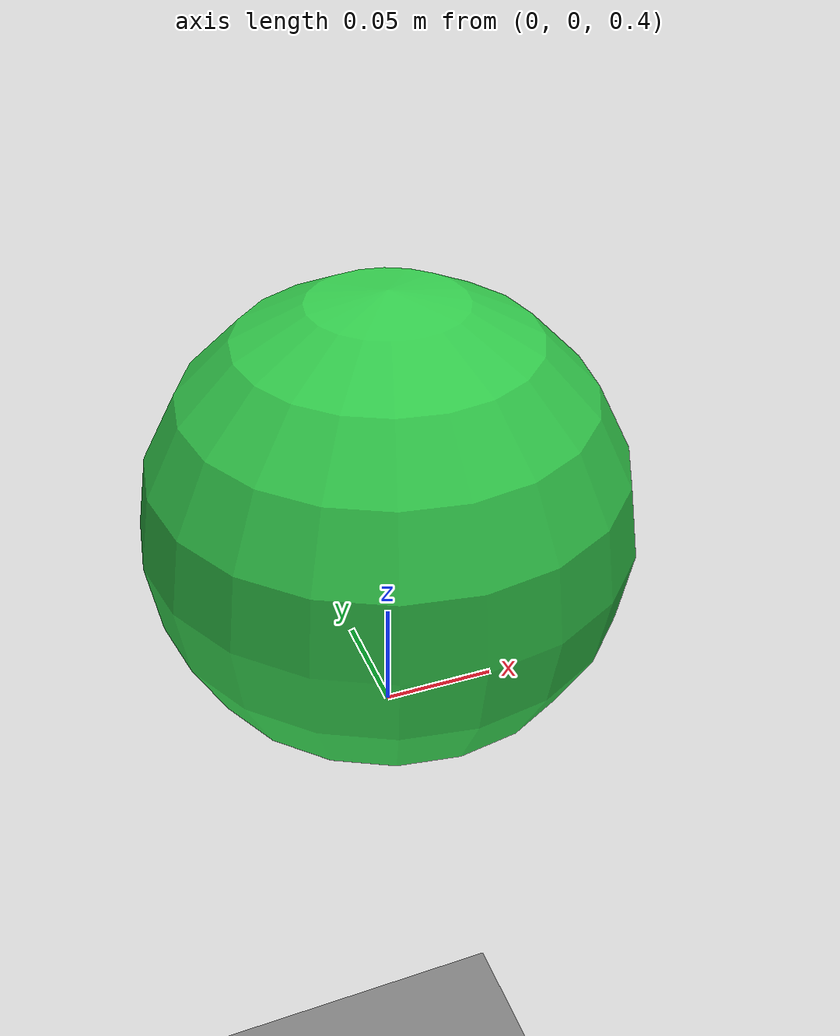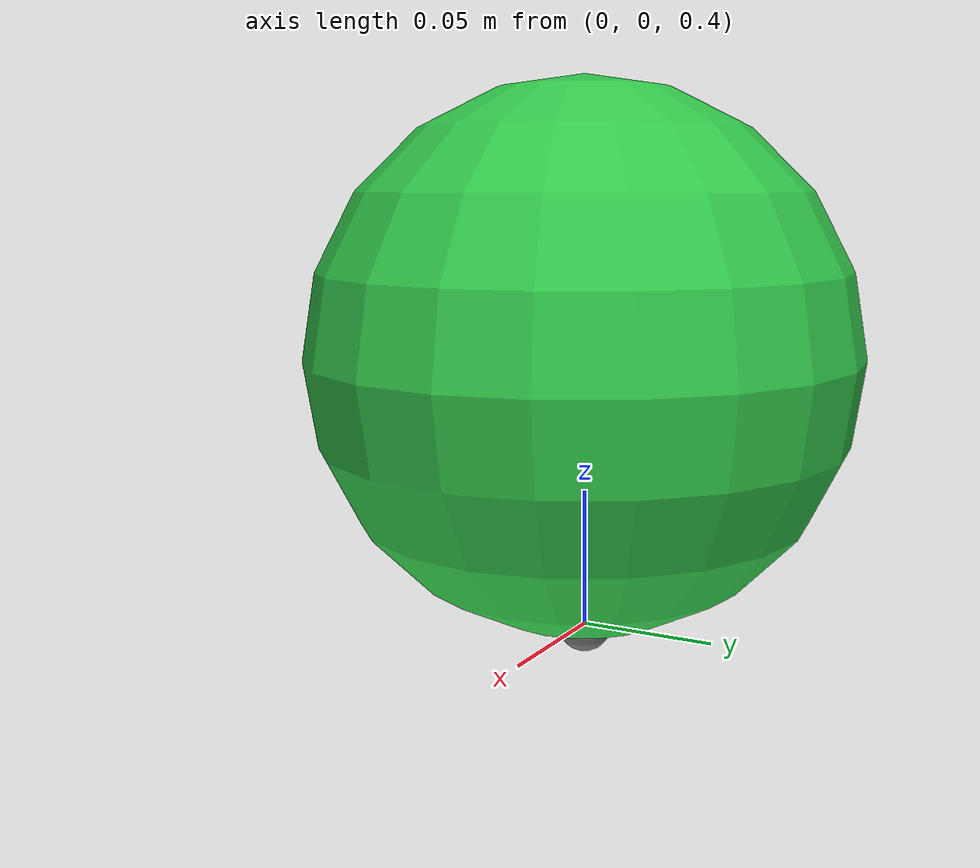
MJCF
<mujoco>
  <worldbody>
    <geom type="plane" size="3 3 0.1"/>
    <body pos="0 0 0.5">
      <joint type="slide" axis="0 0 1" damping="0.1"/>
      <geom type="sphere" size="0.1" rgba="0.2 0.8 0.3 1"/>
      <site name="ball_site" pos="0 0 -0.1" size="0.01"/>
    </body>
  </worldbody>

  <sensor>
    <touch site="ball_site"/>
    <accelerometer site="ball_site"/>
  </sensor>
</mujoco>
